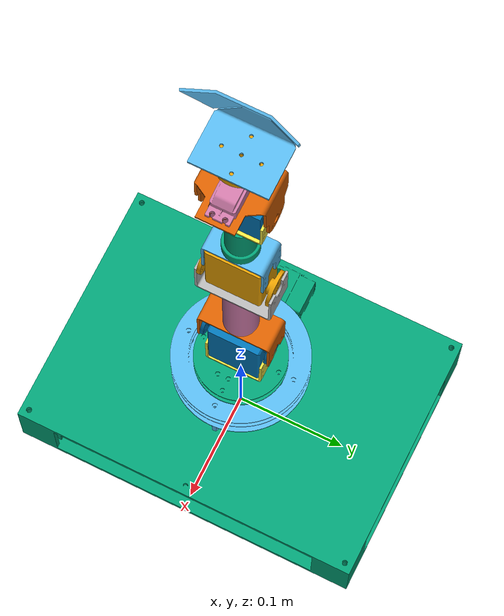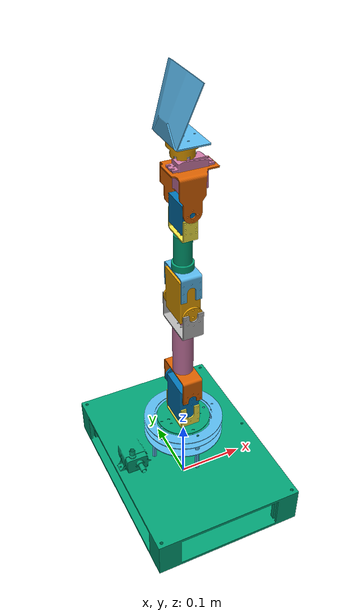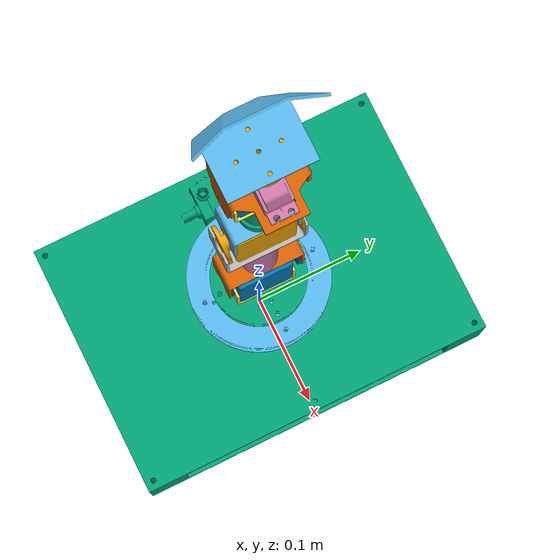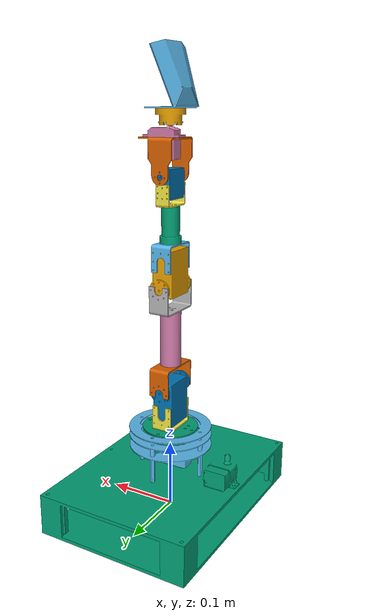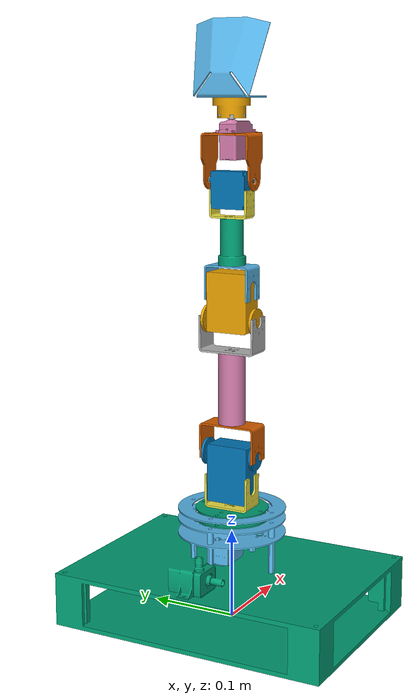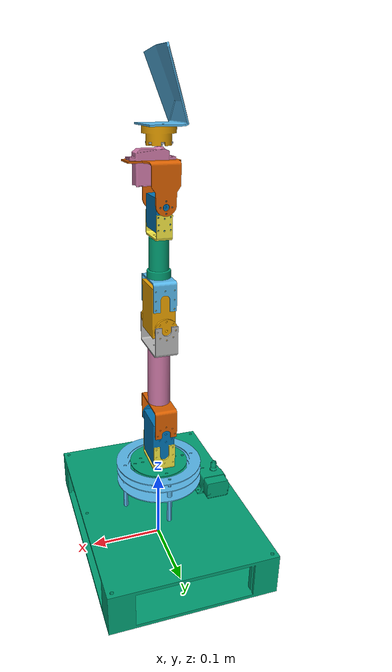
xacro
<?xml version="1.0"?>
<robot xmlns:xacro="http://www.ros.org/wiki/xacro" name="cied_robotic_arm">
    <xacro:arg name="initial_positions_file" default="initial_positions.yaml" />

    <!-- Import cied_robotic_arm urdf file -->
    <xacro:include filename="$(find cied_robotic_arm_description)/urdf/cied_robotic_arm.xacro" />

    <!-- Import control_xacro -->
    <xacro:include filename="cied_robotic_arm.ros2_control.xacro" />

    <xacro:cied_robotic_arm_ros2_control name="FakeSystem" initial_positions_file="$(arg initial_positions_file)"/>

</robot>

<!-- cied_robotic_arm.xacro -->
<robot xmlns:xacro="http://www.ros.org/wiki/xacro" name="cied_robotic_arm">

  <xacro:arg name="is_sim" default="true"/>

  <xacro:property name="PI" value="1.57079632679"/>
  <xacro:property name="velocity" value="30.0"/>
  <xacro:property name="effort" value="10.0"/>

  <xacro:include filename="$(find cied_robotic_arm_description)/urdf/cied_robotic_arm.ros2_control.xacro"/>

  <link name="world"/>

  <joint name="world_joint" type="fixed">
    <parent link="world"/>
    <child link="base_link"/>
    <origin xyz="0.0 0.0 0.0" rpy="0.0 0.0 0.0"/>
  </joint>

  <link name="BASE_CONVERTED_EDITED-v6-v1">
    <inertial>
      <origin xyz="-0.04938015728291417 -5.657032001121962e-08 0.051695821493360765" rpy="0.0 -0.0 0.0" />
      <mass value="0.24960671310222884" />
      <inertia ixx="0.000330009443583525" iyy="0.00032926072867694436" izz="0.0005918726705723311" ixy="-4.291292584903516e-08" iyz="6.723377398873494e-11" ixz="7.02263810806836e-07" />
    </inertial>
    <visual name="BASE_CONVERTED_EDITED-v6-v1_visual">
      <origin xyz="-0.050213549999999996 0.0 -0.0030970999999999985" rpy="0.0 -0.0 0.0" />
      <geometry>
        <mesh filename="package://cied_robotic_arm_description/meshes/BASE_CONVERTED_EDITED-v6-v1.stl" scale="0.001 0.001 0.001" />
      </geometry>
    </visual>
    <collision name="BASE_CONVERTED_EDITED-v6-v1_collision">
      <origin xyz="-0.050213549999999996 0.0 -0.0030970999999999985" rpy="0.0 -0.0 0.0" />
      <geometry>
        <mesh filename="package://cied_robotic_arm_description/meshes/BASE_CONVERTED_EDITED-v6-v1.stl" scale="0.001 0.001 0.001" />
      </geometry>
    </collision>
  </link>
<link name="SHOULDER-v4-v4">
    <inertial>
      <origin xyz="1.979243414011657e-05 5.609887684809241e-05 0.011999996791605847" rpy="0.0 -0.0 0.0" />
      <mass value="0.040005452205779446" />
      <inertia ixx="1.810057795269496e-05" iyy="1.787822625517511e-05" izz="3.3318440170903614e-05" ixy="1.1661267440260334e-09" iyz="2.1721744859722598e-14" ixz="-5.227815481994956e-11" />
    </inertial>
    <visual name="SHOULDER-v4-v4_visual">
      <origin xyz="-0.000713546282476282 -3.908276670176736e-09 0.0054999954122925045" rpy="-2.2576979285743625e-14 4.0748348515784114e-16 3.141592653589793" />
      <geometry>
        <mesh filename="package://cied_robotic_arm_description/meshes/SHOULDER-v4-v4.stl" scale="0.001 0.001 0.001" />
      </geometry>
    </visual>
    <collision name="SHOULDER-v4-v4_collision">
      <origin xyz="-0.000713546282476282 -3.908276670176736e-09 0.0054999954122925045" rpy="-2.2576979285743625e-14 4.0748348515784114e-16 3.141592653589793" />
      <geometry>
        <mesh filename="package://cied_robotic_arm_description/meshes/SHOULDER-v4-v4.stl" scale="0.001 0.001 0.001" />
      </geometry>
    </collision>
  </link>

  <link name="LD260M_Static_Coupling-v5">
    <inertial>
      <origin xyz="2.699705515623839e-06 3.90825996229166e-09 -0.009675397713086316" rpy="0.0 -0.0 0.0" />
      <mass value="0.016191747656046702" />
      <inertia ixx="8.95144560154117e-06" iyy="3.3481663987236667e-06" izz="8.40281845351545e-06" ixy="3.3570381990383038e-21" iyz="2.3871770733790336e-18" ixz="7.767405189017513e-10" />
    </inertial>
    <visual name="LD260M_Static_Coupling-v5_visual">
      <origin xyz="3.749790996681289e-09 3.908278122764786e-09 1.4882659371551199e-09" rpy="3.141592653589793 6.314057571722318e-16 -1.5707963267948966" />
      <geometry>
        <mesh filename="package://cied_robotic_arm_description/meshes/LD260M_Static_Coupling-v5.stl" scale="0.001 0.001 0.001" />
      </geometry>
    </visual>
    <collision name="LD260M_Static_Coupling-v5_collision">
      <origin xyz="3.749790996681289e-09 3.908278122764786e-09 1.4882659371551199e-09" rpy="3.141592653589793 6.314057571722318e-16 -1.5707963267948966" />
      <geometry>
        <mesh filename="package://cied_robotic_arm_description/meshes/LD260M_Static_Coupling-v5.stl" scale="0.001 0.001 0.001" />
      </geometry>
    </collision>
  </link>

  <link name="ld-260mg-v4">
    <inertial>
      <origin xyz="0.030589021607647284 -0.02400470998940149 0.01199999662200519" rpy="1.5192908393215678e-64 -0.0 0.0" />
      <mass value="0.17032047096430222" />
      <inertia ixx="5.020845426118051e-05" iyy="7.301170731051874e-05" izz="9.832237321419617e-05" ixy="1.4744841831574142e-09" iyz="-3.197693098516415e-19" ixz="-2.6983293325969805e-19" />
    </inertial>
    <visual name="ld-260mg-v4_visual">
      <origin xyz="0.03699999851173838 3.908276982045323e-09 0.011370500256877058" rpy="1.5707963267948966 1.1396007199410897e-17 -4.1893325713319993e-16" />
      <geometry>
        <mesh filename="package://cied_robotic_arm_description/meshes/ld-260mg-v4.stl" scale="0.001 0.001 0.001" />
      </geometry>
    </visual>
    <collision name="ld-260mg-v4_collision">
      <origin xyz="0.03699999851173838 3.908276982045323e-09 0.011370500256877058" rpy="1.5707963267948966 1.1396007199410897e-17 -4.1893325713319993e-16" />
      <geometry>
        <mesh filename="package://cied_robotic_arm_description/meshes/ld-260mg-v4.stl" scale="0.001 0.001 0.001" />
      </geometry>
    </collision>
  </link>

  <link name="LD260M_ROTATING_COUPLING-v6">
    <inertial>
      <origin xyz="7.013478893472749e-05 -0.03075000390828834 0.02446329499094343" rpy="0.0 -0.0 0.0" />
      <mass value="0.020572903371824908" />
      <inertia ixx="1.7088262568710545e-05" iyy="4.495702909559419e-06" izz="1.5898542932403438e-05" ixy="5.405702851216466e-21" iyz="2.596367741571244e-18" ixz="2.049413735630734e-09" />
    </inertial>
    <visual name="LD260M_ROTATING_COUPLING-v6_visual">
      <origin xyz="6.585130943322002e-05 -0.030750003908274846 0.03500238211453896" rpy="-3.141592653589793 -4.787736410355276e-16 -1.5707963267948968" />
      <geometry>
        <mesh filename="package://cied_robotic_arm_description/meshes/LD260M_ROTATING_COUPLING-v6.stl" scale="0.001 0.001 0.001" />
      </geometry>
    </visual>
    <collision name="LD260M_ROTATING_COUPLING-v6_collision">
      <origin xyz="6.585130943322002e-05 -0.030750003908274846 0.03500238211453896" rpy="-3.141592653589793 -4.787736410355276e-16 -1.5707963267948968" />
      <geometry>
        <mesh filename="package://cied_robotic_arm_description/meshes/LD260M_ROTATING_COUPLING-v6.stl" scale="0.001 0.001 0.001" />
      </geometry>
    </collision>
  </link>

  <link name="Link-4-v2">
    <inertial>
      <origin xyz="1.3094332452015523e-09 3.908274888130004e-09 -0.04000000211453898" rpy="0.0 -0.0 0.0" />
      <mass value="0.0493840417317038" />
      <inertia ixx="2.8895698112982055e-05" iyy="2.8895698113083103e-05" izz="5.992820904315784e-06" ixy="-1.0743818842532749e-18" iyz="1.0587911840678754e-20" ixz="2.0117032497289633e-21" />
    </inertial>
    <visual name="Link-4-v2_visual">
      <origin xyz="1.3094332479424154e-09 3.908274890870867e-09 -0.04000000211453898" rpy="-3.1415926535897927 -1.424239869492334e-16 3.141592653589793" />
      <geometry>
        <mesh filename="package://cied_robotic_arm_description/meshes/Link-4-v2.stl" scale="0.001 0.001 0.001" />
      </geometry>
    </visual>
    <collision name="Link-4-v2_collision">
      <origin xyz="1.3094332479424154e-09 3.908274890870867e-09 -0.04000000211453898" rpy="-3.1415926535897927 -1.424239869492334e-16 3.141592653589793" />
      <geometry>
        <mesh filename="package://cied_robotic_arm_description/meshes/Link-4-v2.stl" scale="0.001 0.001 0.001" />
      </geometry>
    </collision>
  </link>

  <link name="LD260M_ROTATING_COUPLING-v6_2">
    <inertial>
      <origin xyz="-4.282170068265235e-06 -3.908288360148643e-09 0.01053908923813534" rpy="0.0 -0.0 0.0" />
      <mass value="0.020572903371824908" />
      <inertia ixx="1.7088262568712388e-05" iyy="4.495702909559094e-06" izz="1.58985429324058e-05" ixy="1.3882106931382902e-20" iyz="-2.587368016506667e-18" ixz="2.049413735210447e-09" />
    </inertial>
    <visual name="LD260M_ROTATING_COUPLING-v6_visual">
      <origin xyz="1.3094332425647726e-09 -3.9082748716154355e-09 2.1145389794696714e-09" rpy="-2.1558170219232416e-14 -7.426145760999054e-16 -1.5707963267948994" />
      <geometry>
        <mesh filename="package://cied_robotic_arm_description/meshes/LD260M_ROTATING_COUPLING-v6.stl" scale="0.001 0.001 0.001" />
      </geometry>
    </visual>
    <collision name="LD260M_ROTATING_COUPLING-v6_collision">
      <origin xyz="1.3094332425647726e-09 -3.9082748716154355e-09 2.1145389794696714e-09" rpy="-2.1558170219232416e-14 -7.426145760999054e-16 -1.5707963267948994" />
      <geometry>
        <mesh filename="package://cied_robotic_arm_description/meshes/LD260M_ROTATING_COUPLING-v6.stl" scale="0.001 0.001 0.001" />
      </geometry>
    </collision>
  </link>
  <link name="ld-260mg-v4_2">
    <inertial>
      <origin xyz="0.019410972621429465 0.03075471780594978 -4.003138724274075e-09" rpy="0.0 -0.0 0.0" />
      <mass value="0.17032047096430222" />
      <inertia ixx="5.020845426114139e-05" iyy="7.30117073105066e-05" izz="9.832237321417622e-05" ixy="1.4744841829515852e-09" iyz="6.897569614865304e-19" ixz="2.7113524641610154e-18" />
    </inertial>
    <visual name="ld-260mg-v4_visual">
      <origin xyz="0.012999995717339594 0.006750003908273321 -0.000629500368266719" rpy="1.5707963267948994 -1.734723475976931e-17 3.1415926535897913" />
      <geometry>
        <mesh filename="package://cied_robotic_arm_description/meshes/ld-260mg-v4.stl" scale="0.001 0.001 0.001" />
      </geometry>
    </visual>
    <collision name="ld-260mg-v4_collision">
      <origin xyz="0.012999995717339594 0.006750003908273321 -0.000629500368266719" rpy="1.5707963267948994 -1.734723475976931e-17 3.1415926535897913" />
      <geometry>
        <mesh filename="package://cied_robotic_arm_description/meshes/ld-260mg-v4.stl" scale="0.001 0.001 0.001" />
      </geometry>
    </collision>
  </link>
  <link name="LD260M_Static_Coupling-v5_2">
    <inertial>
      <origin xyz="0.012000119080372936 0.02400000390829026 -0.0008245965159843394" rpy="0.0 -0.0 0.0" />
      <mass value="0.016191747656046702" />
      <inertia ixx="8.951445601541657e-06" iyy="3.3481663987244663e-06" izz="8.402818453515487e-06" ixy="1.8571342125157732e-20" iyz="2.3964679660192292e-18" ixz="-7.767405188795365e-10" />
    </inertial>
    <visual name="LD260M_Static_Coupling-v5_visual">
      <origin xyz="0.011997423124648311 0.024000003908272092 -0.010499995717336575" rpy="-2.1085563850498035e-15 -3.6760471486577964e-16 1.5707963267948994" />
      <geometry>
        <mesh filename="package://cied_robotic_arm_description/meshes/LD260M_Static_Coupling-v5.stl" scale="0.001 0.001 0.001" />
      </geometry>
    </visual>
    <collision name="LD260M_Static_Coupling-v5_collision">
      <origin xyz="0.011997423124648311 0.024000003908272092 -0.010499995717336575" rpy="-2.1085563850498035e-15 -3.6760471486577964e-16 1.5707963267948994" />
      <geometry>
        <mesh filename="package://cied_robotic_arm_description/meshes/LD260M_Static_Coupling-v5.stl" scale="0.001 0.001 0.001" />
      </geometry>
    </collision>
  </link>
  <link name="Link-3-v2">
    <inertial>
      <origin xyz="3.1246929910883072e-09 3.908272083325004e-09 -0.02317682828014121" rpy="0.0 -0.0 -1.5192908393215678e-64" />
      <mass value="0.022397647542727356" />
      <inertia ixx="5.961670430650306e-06" iyy="5.961670431988211e-06" izz="2.1633129744167147e-06" ixy="-1.0403580845025906e-18" iyz="1.376428539288238e-20" ixz="1.4378596037878562e-17" />
    </inertial>
    <visual name="Link-3-v2_visual">
      <origin xyz="3.124648311793321e-09 3.908272089951647e-09 4.2826633972481434e-09" rpy="3.1415926535897927 2.3313150927750737e-15 -3.1415926535897882" />
      <geometry>
        <mesh filename="package://cied_robotic_arm_description/meshes/Link-3-v2.stl" scale="0.001 0.001 0.001" />
      </geometry>
    </visual>
    <collision name="Link-3-v2_collision">
      <origin xyz="3.124648311793321e-09 3.908272089951647e-09 4.2826633972481434e-09" rpy="3.1415926535897927 2.3313150927750737e-15 -3.1415926535897882" />
      <geometry>
        <mesh filename="package://cied_robotic_arm_description/meshes/Link-3-v2.stl" scale="0.001 0.001 0.001" />
      </geometry>
    </collision>
  </link>
  <link name="Wrist1servo_to_Link3_servo_Coupling-v6">
    <inertial>
      <origin xyz="3.124645056550024e-09 3.908293039339705e-09 -0.009684445898262126" rpy="0.0 -0.0 0.0" />
      <mass value="0.009889944657493504" />
      <inertia ixx="4.090244994843853e-06" iyy="1.2438506923880075e-06" izz="3.5178933641127882e-06" ixy="1.314617468015213e-20" iyz="-1.7368939979041462e-18" ixz="-2.760268616864951e-19" />
    </inertial>
    <visual name="Wrist1servo_to_Link3_servo_Coupling-v6_visual">
      <origin xyz="3.124648310752487e-09 3.908272069134966e-09 4.282663539356691e-09" rpy="-3.141592653589793 4.162451083849467e-16 1.5707963267949014" />
      <geometry>
        <mesh filename="package://cied_robotic_arm_description/meshes/Wrist1servo_to_Link3_servo_Coupling-v6.stl" scale="0.001 0.001 0.001" />
      </geometry>
    </visual>
    <collision name="Wrist1servo_to_Link3_servo_Coupling-v6_collision">
      <origin xyz="3.124648310752487e-09 3.908272069134966e-09 4.282663539356691e-09" rpy="-3.141592653589793 4.162451083849467e-16 1.5707963267949014" />
      <geometry>
        <mesh filename="package://cied_robotic_arm_description/meshes/Wrist1servo_to_Link3_servo_Coupling-v6.stl" scale="0.001 0.001 0.001" />
      </geometry>
    </collision>
  </link>
  <link name="220MG_SERVO_CHANGED-v1">
    <inertial>
      <origin xyz="0.01750466156140206 -0.01978175693502161 -0.007500003124648311" rpy="-5.397605346934029e-79 -0.0 0.0" />
      <mass value="0.25235167952814613" />
      <inertia ixx="4.285769822184116e-05" iyy="4.129166685424429e-05" izz="6.751804831904573e-05" ixy="-3.7549444242090253e-07" iyz="4.536786281577916e-19" ixz="-1.4539111612200497e-19" />
    </inertial>
    <visual name="220MG_SERVO_CHANGED-v1_visual">
      <origin xyz="0.017369995717336266 -3.90827274543426e-09 -0.007500003124648404" rpy="1.570796326794892 -1.9949319973733664e-17 1.7289064228636335e-15" />
      <geometry>
        <mesh filename="package://cied_robotic_arm_description/meshes/220MG_SERVO_CHANGED-v1.stl" scale="0.001 0.001 0.001" />
      </geometry>
    </visual>
    <collision name="220MG_SERVO_CHANGED-v1_collision">
      <origin xyz="0.017369995717336266 -3.90827274543426e-09 -0.007500003124648404" rpy="1.570796326794892 -1.9949319973733664e-17 1.7289064228636335e-15" />
      <geometry>
        <mesh filename="package://cied_robotic_arm_description/meshes/220MG_SERVO_CHANGED-v1.stl" scale="0.001 0.001 0.001" />
      </geometry>
    </collision>
  </link>
  <link name="Link2_50mm_wrist2_to_wrist1-v3">
    <inertial>
      <origin xyz="0.0022578914124223694 0.025750003917791923 -0.032822101468734176" rpy="0.0 -0.0 1.7581823911077792e-63" />
      <mass value="0.027364975721576753" />
      <inertia ixx="2.3420126528716882e-05" iyy="1.32489239595239e-05" izz="2.0034765736280334e-05" ixy="-3.670917422720498e-15" iyz="4.2148403924603716e-15" ixz="9.990815722341986e-07" />
    </inertial>
    <visual name="Link2_50mm_wrist2_to_wrist1-v3_visual">
      <origin xyz="0.009600003124648315 0.025750003833766483 -0.047999995717336506" rpy="-3.1415926535897913 -2.294666630423304e-15 -1.5707963267948917" />
      <geometry>
        <mesh filename="package://cied_robotic_arm_description/meshes/Link2_50mm_wrist2_to_wrist1-v3.stl" scale="0.001 0.001 0.001" />
      </geometry>
    </visual>
    <collision name="Link2_50mm_wrist2_to_wrist1-v3_collision">
      <origin xyz="0.009600003124648315 0.025750003833766483 -0.047999995717336506" rpy="-3.1415926535897913 -2.294666630423304e-15 -1.5707963267948917" />
      <geometry>
        <mesh filename="package://cied_robotic_arm_description/meshes/Link2_50mm_wrist2_to_wrist1-v3.stl" scale="0.001 0.001 0.001" />
      </geometry>
    </collision>
  </link>
  <link name="WRIST_SERVO_-LD-20M__Servo-20kg-v2">
    <inertial>
      <origin xyz="0.024964511574029062 0.005000018784715795 0.008060598454641195" rpy="0.0 -0.0 0.0" />
      <mass value="0.056568095644142974" />
      <inertia ixx="9.281777910086914e-06" iyy="1.5339641009803895e-05" izz="9.764275031709694e-06" ixy="-5.8205532880645e-12" iyz="1.6941914312288342e-11" ixz="-9.878521895363137e-08" />
    </inertial>
    <visual name="WRIST_SERVO_-LD-20M__Servo-20kg-v2_visual">
      <origin xyz="0.025050003208418558 0.005000003908272424 0.028350004282663266" rpy="-1.5707963267948957 3.702409813282789e-15 -3.14159265358979" />
      <geometry>
        <mesh filename="package://cied_robotic_arm_description/meshes/WRIST_SERVO_-LD-20M__Servo-20kg-v2.stl" scale="0.001 0.001 0.001" />
      </geometry>
    </visual>
    <collision name="WRIST_SERVO_-LD-20M__Servo-20kg-v2_collision">
      <origin xyz="0.025050003208418558 0.005000003908272424 0.028350004282663266" rpy="-1.5707963267948957 3.702409813282789e-15 -3.14159265358979" />
      <geometry>
        <mesh filename="package://cied_robotic_arm_description/meshes/WRIST_SERVO_-LD-20M__Servo-20kg-v2.stl" scale="0.001 0.001 0.001" />
      </geometry>
    </collision>
  </link>
  <link name="Star_horn-v2">
    <inertial>
      <origin xyz="3.2087687826254376e-09 -0.0006819656174591415 -3.90827209439254e-09" rpy="0.0 -0.0 0.0" />
      <mass value="0.0007686055015882889" />
      <inertia ixx="3.2204997207701484e-08" iyy="6.286944291521781e-08" izz="3.220499684324692e-08" ixy="-3.847514814004651e-19" iyz="-4.367513634279985e-22" ixz="4.60188685979379e-22" />
    </inertial>
    <visual name="Star_horn-v2_visual">
      <origin xyz="3.2084185397178446e-09 0.0030000042826630138 -3.90827219852799e-09" rpy="1.5707963267948923 3.4659775050016898e-15 1.7447429808086588e-15" />
      <geometry>
        <mesh filename="package://cied_robotic_arm_description/meshes/Star_horn-v2.stl" scale="0.001 0.001 0.001" />
      </geometry>
    </visual>
    <collision name="Star_horn-v2_collision">
      <origin xyz="3.2084185397178446e-09 0.0030000042826630138 -3.90827219852799e-09" rpy="1.5707963267948923 3.4659775050016898e-15 1.7447429808086588e-15" />
      <geometry>
        <mesh filename="package://cied_robotic_arm_description/meshes/Star_horn-v2.stl" scale="0.001 0.001 0.001" />
      </geometry>
    </collision>
  </link>
  <link name="Wrist2Scooplinker-v5">
    <inertial>
      <origin xyz="-1.546660854116748e-05 -2.6798417233066252e-05 0.009080727488994427" rpy="-1.0947644252537633e-47 -0.0 0.0" />
      <mass value="0.01556014427070851" />
      <inertia ixx="1.7731708424140523e-06" iyy="1.7718589630164035e-06" izz="2.6411441042266464e-06" ixy="-1.1361208010700862e-09" iyz="-4.619849885311562e-09" ixz="-2.6672715742391673e-09" />
    </inertial>
    <visual name="Wrist2Scooplinker-v5_visual">
      <origin xyz="3.2084185500567962e-09 -3.908272100845711e-09 0.016999995717337058" rpy="-1.943309007827419e-15 -1.8823837106935343e-15 -1.0471975511966067" />
      <geometry>
        <mesh filename="package://cied_robotic_arm_description/meshes/Wrist2Scooplinker-v5.stl" scale="0.001 0.001 0.001" />
      </geometry>
    </visual>
    <collision name="Wrist2Scooplinker-v5_collision">
      <origin xyz="3.2084185500567962e-09 -3.908272100845711e-09 0.016999995717337058" rpy="-1.943309007827419e-15 -1.8823837106935343e-15 -1.0471975511966067" />
      <geometry>
        <mesh filename="package://cied_robotic_arm_description/meshes/Wrist2Scooplinker-v5.stl" scale="0.001 0.001 0.001" />
      </geometry>
    </collision>
  </link>
  <link name="Scoopy_sheetMetal-v2">
    <inertial>
      <origin xyz="-0.00974682242486506 -3.908272444425043e-09 0.030973145408579157" rpy="0.0 -0.0 0.0" />
      <mass value="0.04777748013833138" />
      <inertia ixx="5.5176956185808146e-05" iyy="3.9863750555070576e-05" izz="2.6391517986082936e-05" ixy="1.7279170051352777e-19" iyz="-1.0698094734022313e-18" ixz="1.2359714936081454e-07" />
    </inertial>
    <visual name="Scoopy_sheetMetal-v2_visual">
      <origin xyz="-0.014239392491811316 -3.908271734506808e-09 0.053190774340914404" rpy="1.919862177193766 4.437951298824676e-15 1.5707963267948877" />
      <geometry>
        <mesh filename="package://cied_robotic_arm_description/meshes/Scoopy_sheetMetal-v2.stl" scale="0.001 0.001 0.001" />
      </geometry>
    </visual>
    <collision name="Scoopy_sheetMetal-v2_collision">
      <origin xyz="-0.014239392491811316 -3.908271734506808e-09 0.053190774340914404" rpy="1.919862177193766 4.437951298824676e-15 1.5707963267948877" />
      <geometry>
        <mesh filename="package://cied_robotic_arm_description/meshes/Scoopy_sheetMetal-v2.stl" scale="0.001 0.001 0.001" />
      </geometry>
    </collision>
  </link>
  <link name="base_link">
    <inertial>
      <origin xyz="-1.7860712908657207e-16 -1.6672427327613093e-16 0.029990265082941878" rpy="0.0 0.0 0.0" />
      <mass value="1.020568380561133" />
      <inertia ixx="0.011300786346274697" iyy="0.0060619492152825805" izz="0.01597711789402057" ixy="-5.138882716542836e-18" iyz="-5.764059206065514e-19" ixz="-2.520770051028798e-18" />
    </inertial>
    <visual name="base_link-v1_visual">
      <origin xyz="0.0 0.0 0.0" rpy="0.0 0.0 0.0" />
      <geometry>
        <mesh filename="package://cied_robotic_arm_description/meshes/BASE_ASSEMBLY_v7.stl" scale="0.001 0.001 0.001" />
      </geometry>
    </visual>
    <collision name="base_link-v1_collision">
      <origin xyz="0.0 0.0 0.0" rpy="0.0 0.0 0.0" />
      <geometry>
        <mesh filename="package://cied_robotic_arm_description/meshes/BASE_ASSEMBLY_v7.stl" scale="0.001 0.001 0.001" />
      </geometry>
    </collision>
  </link>

  <link name="link_tcp"/>

  <joint name="Revolute1" type="revolute">
    <origin xyz="-0.04970247 -0.00011195 0.05075521" rpy="0.0 -0.0 0.0" />
    <parent link="BASE_CONVERTED_EDITED-v6-v1" />
    <child link="SHOULDER-v4-v4" />
    <axis xyz="0.0 0.0 1.0" />
    <limit effort="${effort}" lower="-${PI}" upper="${PI}" velocity="${velocity}"/>
  </joint>

  <joint name="SHOULDER-v4-v4_Rigid-2" type="fixed">
    <origin xyz="-0.00049955 0.0 0.018499999999999996" rpy="3.141592653589793 -0.0 4.586277208776367e-33" />
    <parent link="SHOULDER-v4-v4" />
    <child link="LD260M_Static_Coupling-v5" />
  </joint>

  <joint name="LD260M_Static_Coupling-v5_Rigid-3" type="fixed">
    <origin xyz="-0.011997419999999998 0.024000000000000004 -0.010499999999999999" rpy="1.2870121524895266e-32 1.5707963267948966 0" />
    <parent link="LD260M_Static_Coupling-v5" />
    <child link="ld-260mg-v4" />
  </joint>

  <joint name="Revolute2" type="continuous">
    <origin xyz="0.05000000000000001 -0.05475 0.012" rpy="3.141592653589793 -1.5707963267948966 0" />
    <parent link="ld-260mg-v4" />
    <child link="LD260M_ROTATING_COUPLING-v6" />
    <axis xyz="0.0 1.0 6.869346616982636e-33" />
    <limit effort="${effort}" lower="-${PI}" upper="${PI}" velocity="${velocity}"/>
  </joint>

  <joint name="LD260M_ROTATING_COUPLING-v6_Rigid-4" type="fixed">
    <origin xyz="6.585e-05 -0.03075 0.03500237999999998" rpy="3.141592653589793 4.930380657631324e-32 -1.5478303656778243e-32" />
    <parent link="LD260M_ROTATING_COUPLING-v6" />
    <child link="Link-4-v2" />
  </joint>

  <joint name="Link-4-v2_Rigid-5" type="fixed">
    <origin xyz="0.0 0.0 -0.08" rpy="3.141592653589793 2.465190328815662e-32 -1.5200577870480245e-32" />
    <parent link="Link-4-v2" />
    <child link="LD260M_ROTATING_COUPLING-v6_2" />
  </joint>

  <joint name="Revolute3" type="revolute">
    <origin xyz="6.586e-05 0.03075 0.03500239000000001" rpy="-3.141592653589793 -1.5707963267948966 0" />
    <parent link="LD260M_ROTATING_COUPLING-v6_2" />
    <child link="ld-260mg-v4_2" />
    <axis xyz="2.465190328815662e-32 1.0 -1.029934691332339e-31" />
    <limit effort="${effort}" lower="-${PI}" upper="${PI}" velocity="${velocity}"/>
  </joint>

  <joint name="ld-260mg-v4_Rigid-6" type="fixed">
    <origin xyz="0.05000000000000004 0.006749999999999998 -0.012000000000000002" rpy="-4.319644532628241e-31 -1.5707963267948966 0" />
    <parent link="ld-260mg-v4_2" />
    <child link="LD260M_Static_Coupling-v5_2" />
  </joint>

  <joint name="LD260M_Static_Coupling-v5_Rigid-7" type="fixed">
    <origin xyz="0.011997420000000002 0.024 -0.010499999999999971" rpy="-3.8520506566151146e-31 -4.930380657631324e-32 -4.01445070426838e-31" />
    <parent link="LD260M_Static_Coupling-v5_2" />
    <child link="Link-3-v2" />
  </joint>

  <joint name="Link-3-v2_Rigid-8" type="fixed">
    <origin xyz="0.0 0.0 -0.05" rpy="-2.330949293219734e-62 4.930380657631324e-32 2.1979276005198175e-31" />
    <parent link="Link-3-v2" />
    <child link="Wrist1servo_to_Link3_servo_Coupling-v6" />
  </joint>

  <joint name="Wrist1servo_to_Link3_servo_Coupling-v6_Rigid-9" type="fixed">
    <origin xyz="-0.0075 -0.02 -0.0125" rpy="3.141592653589793 1.5707963267948966 0" />
    <parent link="Wrist1servo_to_Link3_servo_Coupling-v6" />
    <child link="220MG_SERVO_CHANGED-v1" />
  </joint>

  <joint name="Revolute4" type="revolute">
    <origin xyz="0.02724000000000004 0.006000000000000001 -0.007499999999999999" rpy="-3.141592653589793 1.5707963267948963 0" />
    <parent link="220MG_SERVO_CHANGED-v1" />
    <child link="Link2_50mm_wrist2_to_wrist1-v3" />
    <axis xyz="3.0814879110195774e-33 -1.0 8.91504385359392e-33" />
    <limit effort="${effort}" lower="-${PI}" upper="${PI}" velocity="${velocity}"/>
  </joint>

  <joint name="Link2_50mm_wrist2_to_wrist1-v3_Rigid-10" type="fixed">
    <origin xyz="-0.015149999999999999 0.020749999999999998 -0.05" rpy="2.6092818667725115e-31 1.9721522630525295e-31 -7.220896241366683e-31" />
    <parent link="Link2_50mm_wrist2_to_wrist1-v3" />
    <child link="WRIST_SERVO_-LD-20M__Servo-20kg-v2" />
  </joint>

  <joint name="Revolute5" type="revolute">
    <origin xyz="0.0151 0.004999999999999999 -0.017299999999999968" rpy="1.5707963267948966 -1.09072112710782e-31 7.251711120476879e-31" />
    <parent link="WRIST_SERVO_-LD-20M__Servo-20kg-v2" />
    <child link="Star_horn-v2" />
    <axis xyz="-1.09072112710782e-31 -1.0 -7.888609052210118e-31" />
    <limit effort="${effort}" lower="-${PI}" upper="${PI}" velocity="${velocity}"/>
  </joint>

  <joint name="Star_horn-v2_Rigid-11" type="fixed">
    <origin xyz="0.0 -0.0020000000000000287 0.0" rpy="1.5707963267948966 -5.449011842358893e-31 -1.09072112710782e-31" />
    <parent link="Star_horn-v2" />
    <child link="Wrist2Scooplinker-v5" />
  </joint>

  <joint name="Wrist2Scooplinker-v5_Rigid-36" type="fixed">
    <origin xyz="0.0 -1.734723475976807e-20 0.016999999999999956" rpy="-2.9582283945787943e-31 -5.4738221262683506e-48 5.55111512312531e-17" />
    <parent link="Wrist2Scooplinker-v5" />
    <child link="Scoopy_sheetMetal-v2" />
  </joint>

  <joint name="base_link-v1_Rigid-1" type="fixed">
    <origin xyz="0.04950035154218169 -0.00012255167345699824 0.060000004510498056" rpy="0.0 -0.0 0.0" />
    <parent link="base_link" />
    <child link="BASE_CONVERTED_EDITED-v6-v1" />
  </joint>

  <joint name="tcp_joint" type="fixed">
    <parent link="Scoopy_sheetMetal-v2"/>
    <child link="link_tcp"/>
    <origin xyz="0.0 0.0 0.08" rpy="0.0 0.0 0.0"/>
  </joint>

</robot>
